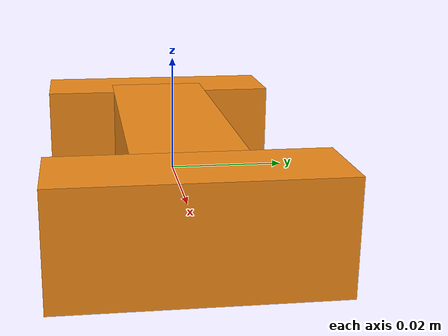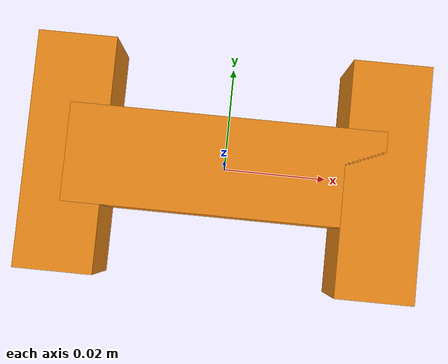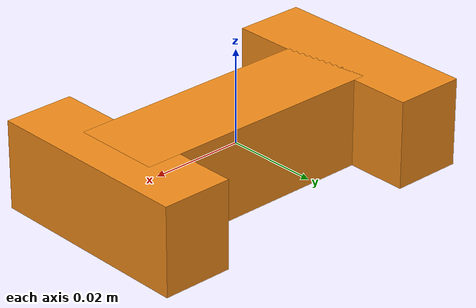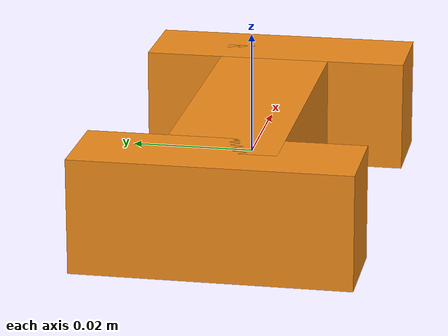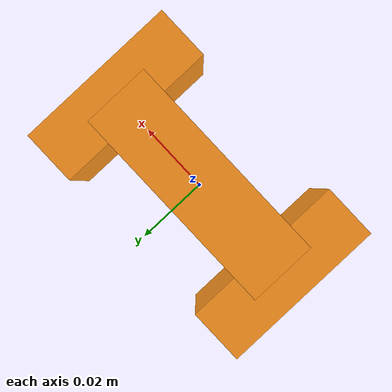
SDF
<?xml version='1.0'?>
<sdf version='1.6'>
  <model name='I_shape_small'>
    <link name='link'>
      <inertial>
        <mass>0.0633</mass>
        <inertia>
          <ixx>0.000047</ixx> <ixy>0</ixy> <ixz>0</ixz>
          <iyy>0.000047</iyy> <iyz>0</iyz>
          <izz>0.000095</izz>
        </inertia>
      </inertial>

      <visual name='web_vis'>
        <geometry><box><size>0.060000 0.018750 0.018750</size></box></geometry>
        <material><script><name>Gazebo/Orange</name></script></material>
      </visual>
      <collision name='web_col'>
        <geometry><box><size>0.060000 0.018750 0.018750</size></box></geometry>
        <surface><friction><ode><mu>100.0</mu><mu2>100.0</mu2></ode></friction></surface>
      </collision>

      <visual name='left_vis'>
        <pose>-0.030000 0.000000 0.000000 0 0 0</pose>
        <geometry><box><size>0.015000 0.045000 0.018750</size></box></geometry>
        <material><script><name>Gazebo/Orange</name></script></material>
      </visual>
      <collision name='left_col'>
        <pose>-0.030000 0.000000 0.000000 0 0 0</pose>
        <geometry><box><size>0.015000 0.045000 0.018750</size></box></geometry>
        <surface><friction><ode><mu>100.0</mu><mu2>100.0</mu2></ode></friction></surface>
      </collision>

      <visual name='right_vis'>
        <pose>0.030000 0.000000 0.000000 0 0 0</pose>
        <geometry><box><size>0.015000 0.045000 0.018750</size></box></geometry>
        <material><script><name>Gazebo/Orange</name></script></material>
      </visual>
      <collision name='right_col'>
        <pose>0.030000 0.000000 0.000000 0 0 0</pose>
        <geometry><box><size>0.015000 0.045000 0.018750</size></box></geometry>
        <surface><friction><ode><mu>100.0</mu><mu2>100.0</mu2></ode></friction></surface>
      </collision>
    </link>
  </model>
</sdf>
